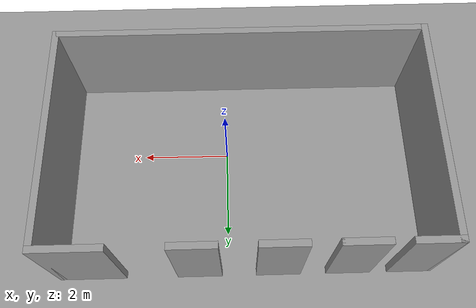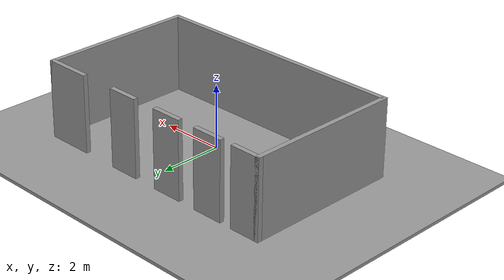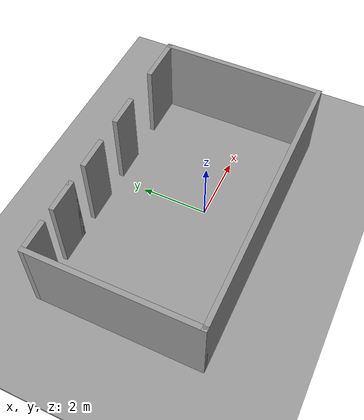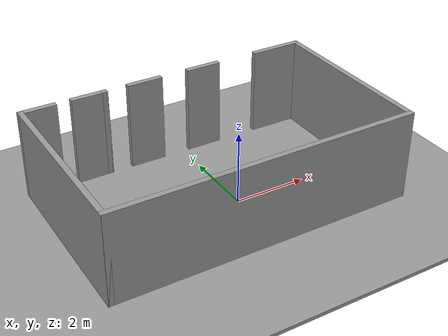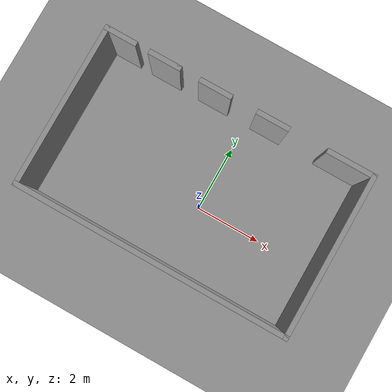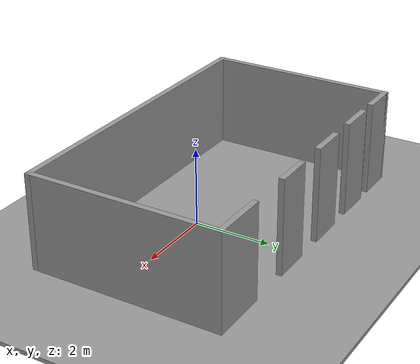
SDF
<sdf version="1.6">
 <world name="default">
  <light name="sun" type="directional">
   <pose>0 0 10 0 -0 0</pose>
   <diffuse>0.8 0.8 0.8 1</diffuse>
   <specular>0.2 0.2 0.2 1</specular>
   <attenuation>
    <range>1000</range>
    <constant>0.9</constant>
    <linear>0.01</linear>
    <quadratic>0.001</quadratic>
   </attenuation>
   <direction>-0.5 0.1 -0.9</direction>
  </light>
  <model name="ground_plane">
   <static>1</static>
   <link name="link">
    <collision name="collision">
     <geometry><plane><normal>0 0 1</normal><size>100 100</size></plane></geometry>
     <surface>
      <contact><collide_bitmask>65535</collide_bitmask></contact>
      <friction><ode><mu>100</mu><mu2>50</mu2></ode></friction>
     </surface>
    </collision>
    <visual name="visual">
     <cast_shadows>0</cast_shadows>
     <geometry><plane><normal>0 0 1</normal><size>100 100</size></plane></geometry>
     <material>
      <script><uri>file://media/materials/scripts/gazebo.material</uri><name>Gazebo/Grey</name></script>
     </material>
    </visual>
   </link>
  </model>
  <gravity>0 0 -9.8</gravity>
  <magnetic_field>6e-06 2.3e-05 -4.2e-05</magnetic_field>
  <atmosphere type="adiabatic"/>
  <physics name="default_physics" default="0" type="ode">
   <max_step_size>0.001</max_step_size>
   <real_time_factor>1</real_time_factor>
   <real_time_update_rate>1000</real_time_update_rate>
  </physics>
  <scene><ambient>0.4 0.4 0.4 1</ambient><background>0.7 0.7 0.7 1</background><shadows>1</shadows></scene>
  <spherical_coordinates>
   <surface_model>EARTH_WGS84</surface_model>
   <latitude_deg>0</latitude_deg>
   <longitude_deg>0</longitude_deg>
   <elevation>0</elevation>
   <heading_deg>0</heading_deg>
  </spherical_coordinates>
  <model name="ground_plane_0">
   <static>1</static>
   <link name="link">
    <collision name="collision">
     <geometry><plane><normal>0 0 1</normal><size>100 100</size></plane></geometry>
     <surface>
      <contact><collide_bitmask>65535</collide_bitmask></contact>
      <friction><ode><mu>100</mu><mu2>50</mu2></ode></friction>
     </surface>
    </collision>
    <visual name="visual">
     <cast_shadows>0</cast_shadows>
     <geometry><plane><normal>0 0 1</normal><size>100 100</size></plane></geometry>
     <material>
      <script><uri>file://media/materials/scripts/gazebo.material</uri><name>Gazebo/Grey</name></script>
     </material>
    </visual>
   </link>
   <pose>-9.74584 -2.1835 0 0 -0 0</pose>
  </model>
  <model name="cztery_dziury">
   <pose>-0.388032 0.568584 0 0 -0 0</pose>
   <link name="Wall_1">
    <collision name="Wall_1_Collision">
     <geometry><box><size>5 0.15 2.5</size></box></geometry>
     <pose>0 0 1.25 0 -0 0</pose>
    </collision>
    <visual name="Wall_1_Visual">
     <pose>0 0 1.25 0 -0 0</pose>
     <geometry><box><size>5 0.15 2.5</size></box></geometry>
     <material>
      <script><uri>file://media/materials/scripts/gazebo.material</uri><name>Gazebo/Grey</name></script>
      <ambient>1 1 1 1</ambient>
     </material>
     <meta><layer>0</layer></meta>
    </visual>
    <pose>-4.1 -0.0925 0 0 -0 -1.5708</pose>
   </link>
   <link name="Wall_2">
    <collision name="Wall_2_Collision">
     <geometry><box><size>0.15 0.15 2.5</size></box></geometry>
     <pose>0 0 1.25 0 -0 0</pose>
    </collision>
    <visual name="Wall_2_Visual">
     <pose>0 0 1.25 0 -0 0</pose>
     <geometry><box><size>0.15 0.15 2.5</size></box></geometry>
     <material>
      <script><uri>file://media/materials/scripts/gazebo.material</uri><name>Gazebo/Grey</name></script>
      <ambient>1 1 1 1</ambient>
     </material>
     <meta><layer>0</layer></meta>
    </visual>
    <pose>-4.1 -2.5175 0 0 -0 0</pose>
   </link>
   <link name="Wall_34">
    <collision name="Wall_34_Collision">
     <geometry><box><size>1 0.15 2.5</size></box></geometry>
     <pose>0 0 1.25 0 -0 0</pose>
    </collision>
    <visual name="Wall_34_Visual">
     <pose>0 0 1.25 0 -0 0</pose>
     <geometry><box><size>1 0.15 2.5</size></box></geometry>
     <material>
      <script><uri>file://media/materials/scripts/gazebo.material</uri><name>Gazebo/Grey</name></script>
      <ambient>1 1 1 1</ambient>
     </material>
     <meta><layer>0</layer></meta>
    </visual>
    <pose>-2.295 2.3325 0 0 -0 0</pose>
   </link>
   <link name="Wall_35">
    <collision name="Wall_35_Collision">
     <geometry><box><size>0.15 0.15 2.5</size></box></geometry>
     <pose>0 0 1.25 0 -0 0</pose>
    </collision>
    <visual name="Wall_35_Visual">
     <pose>0 0 1.25 0 -0 0</pose>
     <geometry><box><size>0.15 0.15 2.5</size></box></geometry>
     <material>
      <script><uri>file://media/materials/scripts/gazebo.material</uri><name>Gazebo/Grey</name></script>
      <ambient>1 1 1 1</ambient>
     </material>
     <meta><layer>0</layer></meta>
    </visual>
    <pose>-1.87 2.3325 0 0 -0 0</pose>
   </link>
   <link name="Wall_37">
    <collision name="Wall_37_Collision">
     <geometry><box><size>1 0.15 2.5</size></box></geometry>
     <pose>0 0 1.25 0 -0 0</pose>
    </collision>
    <visual name="Wall_37_Visual">
     <pose>0 0 1.25 0 -0 0</pose>
     <geometry><box><size>1 0.15 2.5</size></box></geometry>
     <material>
      <script><uri>file://media/materials/scripts/gazebo.material</uri><name>Gazebo/Grey</name></script>
      <ambient>1 1 1 1</ambient>
     </material>
     <meta><layer>0</layer></meta>
    </visual>
    <pose>-0.725 2.3325 0 0 -0 0</pose>
   </link>
   <link name="Wall_39">
    <collision name="Wall_39_Collision">
     <geometry><box><size>1 0.15 2.5</size></box></geometry>
     <pose>0 0 1.25 0 -0 0</pose>
    </collision>
    <visual name="Wall_39_Visual">
     <pose>0 0 1.25 0 -0 0</pose>
     <geometry><box><size>1 0.15 2.5</size></box></geometry>
     <material>
      <script><uri>file://media/materials/scripts/gazebo.material</uri><name>Gazebo/Grey</name></script>
      <ambient>1 1 1 1</ambient>
     </material>
     <meta><layer>0</layer></meta>
    </visual>
    <pose>1.035 2.3325 0 0 -0 0</pose>
   </link>
   <link name="Wall_41">
    <collision name="Wall_41_Collision">
     <geometry><box><size>1.5 0.15 2.5</size></box></geometry>
     <pose>0 0 1.25 0 -0 0</pose>
    </collision>
    <visual name="Wall_41_Visual">
     <pose>0 0 1.25 0 -0 0</pose>
     <geometry><box><size>1.5 0.15 2.5</size></box></geometry>
     <material>
      <script><uri>file://media/materials/scripts/gazebo.material</uri><name>Gazebo/Grey</name></script>
      <ambient>1 1 1 1</ambient>
     </material>
     <meta><layer>0</layer></meta>
    </visual>
    <pose>3.425 2.3325 0 0 -0 0</pose>
   </link>
   <link name="Wall_47">
    <collision name="Wall_47_Collision">
     <geometry><box><size>5 0.15 2.5</size></box></geometry>
     <pose>0 0 1.25 0 -0 0</pose>
    </collision>
    <visual name="Wall_47_Visual">
     <pose>0 0 1.25 0 -0 0</pose>
     <geometry><box><size>5 0.15 2.5</size></box></geometry>
     <material>
      <script><uri>file://media/materials/scripts/gazebo.material</uri><name>Gazebo/Grey</name></script>
      <ambient>1 1 1 1</ambient>
     </material>
     <meta><layer>0</layer></meta>
    </visual>
    <pose>4.1 -0.0925 0 0 -0 -1.5708</pose>
   </link>
   <link name="Wall_49">
    <collision name="Wall_49_Collision">
     <geometry><box><size>8.35 0.15 2.5</size></box></geometry>
     <pose>0 0 1.25 0 -0 0</pose>
    </collision>
    <visual name="Wall_49_Visual">
     <pose>0 0 1.25 0 -0 0</pose>
     <geometry><box><size>8.35 0.15 2.5</size></box></geometry>
     <material>
      <script><uri>file://media/materials/scripts/gazebo.material</uri><name>Gazebo/Grey</name></script>
      <ambient>1 1 1 1</ambient>
     </material>
     <meta><layer>0</layer></meta>
    </visual>
    <pose>-0 -2.5175 0 0 -0 0</pose>
   </link>
   <link name="Wall_6">
    <collision name="Wall_6_Collision">
     <geometry><box><size>1 0.15 2.5</size></box></geometry>
     <pose>0 0 1.25 0 -0 0</pose>
    </collision>
    <visual name="Wall_6_Visual">
     <pose>0 0 1.25 0 -0 0</pose>
     <geometry><box><size>1 0.15 2.5</size></box></geometry>
     <material>
      <script><uri>file://media/materials/scripts/gazebo.material</uri><name>Gazebo/Grey</name></script>
      <ambient>1 1 1 1</ambient>
     </material>
     <meta><layer>0</layer></meta>
    </visual>
    <pose>-3.675 2.3325 0 0 -0 0</pose>
   </link>
   <static>1</static>
  </model>
 </world>
</sdf>
